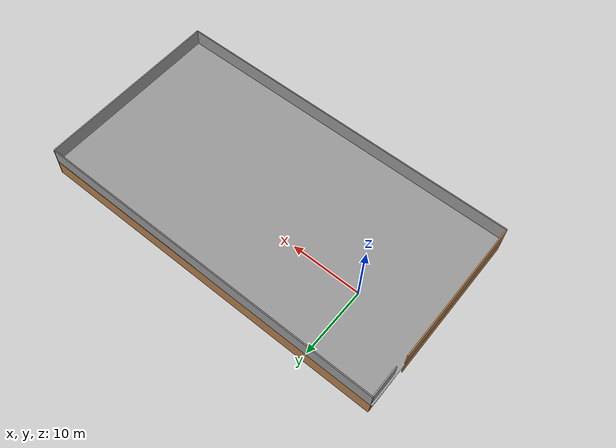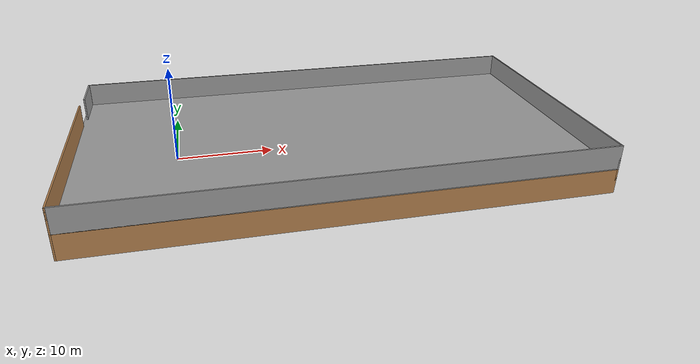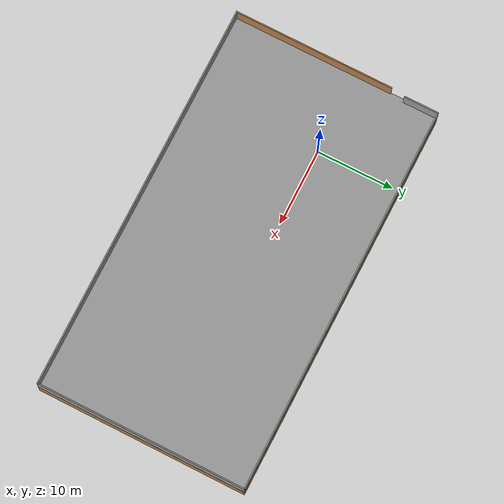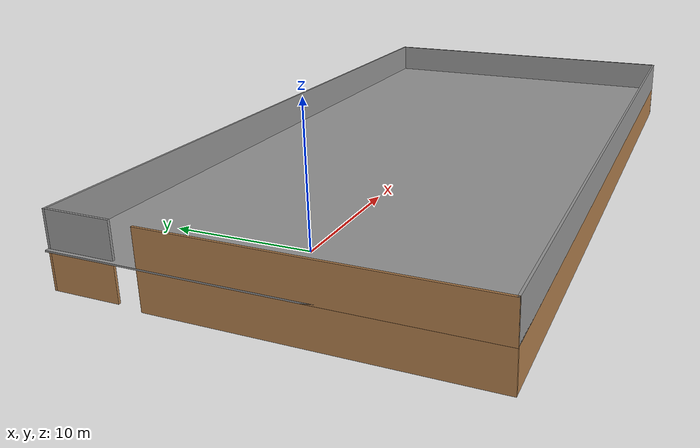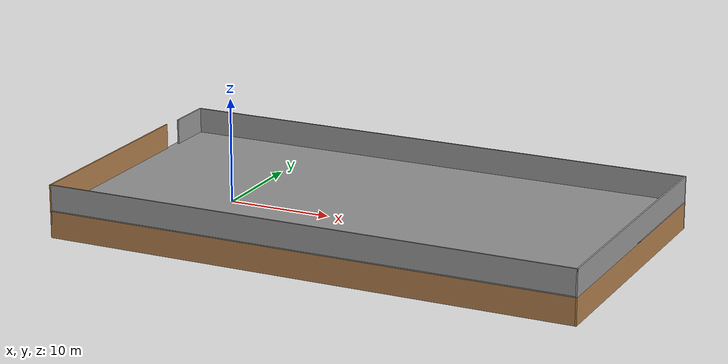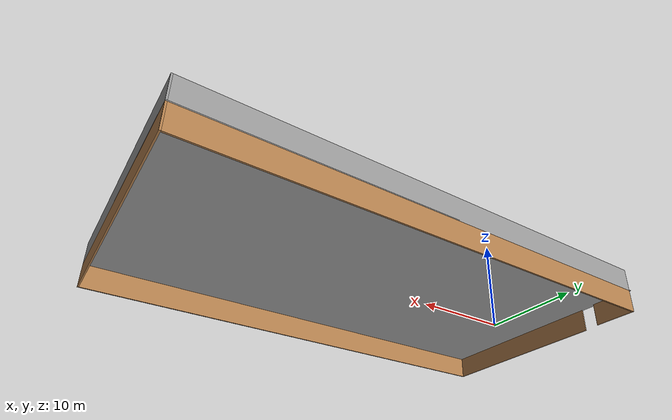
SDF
<?xml version='1.0'?>
<sdf version='1.7'>
  <model name='Untitled'>
    <pose>15.4538 -2.50054 0 0 -0 0</pose>
    <link name='Floor_0'>
      <collision name='Floor_0_Collision'>
        <geometry>
          <box>
            <size>50.5 27 0.1</size>
          </box>
        </geometry>
        <pose>0 0 0.05 0 -0 0</pose>
      </collision>
      <visual name='Floor_0_Visual'>
        <pose>0 0 0.05 0 -0 0</pose>
        <geometry>
          <box>
            <size>50.5 27 0.1</size>
          </box>
        </geometry>
        <material>
          <script>
            <uri>file://media/materials/scripts/gazebo.material</uri>
            <name>Gazebo/Grey</name>
          </script>
          <ambient>1 1 1 1</ambient>
        </material>
        <meta>
          <layer>1</layer>
        </meta>
      </visual>
      <pose>1e-06 0 2.5 0 -0 0</pose>
    </link>
    <link name='Wall_0'>
      <collision name='Wall_0_Collision'>
        <geometry>
          <box>
            <size>20.75 0.15 2.5</size>
          </box>
        </geometry>
        <pose>0 0 1.25 0 -0 0</pose>
      </collision>
      <visual name='Wall_0_Visual'>
        <pose>0 0 1.25 0 -0 0</pose>
        <geometry>
          <box>
            <size>20.75 0.15 2.5</size>
          </box>
        </geometry>
        <material>
          <script>
            <uri>file://media/materials/scripts/gazebo.material</uri>
            <name>Gazebo/Wood</name>
          </script>
          <ambient>1 1 1 1</ambient>
        </material>
        <meta>
          <layer>0</layer>
        </meta>
      </visual>
      <pose>-25.175 -3.125 0 0 -0 -1.5708</pose>
    </link>
    <link name='Wall_1'>
      <collision name='Wall_1_Collision'>
        <geometry>
          <box>
            <size>50.5 0.15 2.5</size>
          </box>
        </geometry>
        <pose>0 0 1.25 0 -0 0</pose>
      </collision>
      <visual name='Wall_1_Visual'>
        <pose>0 0 1.25 0 -0 0</pose>
        <geometry>
          <box>
            <size>50.5 0.15 2.5</size>
          </box>
        </geometry>
        <material>
          <script>
            <uri>file://media/materials/scripts/gazebo.material</uri>
            <name>Gazebo/Wood</name>
          </script>
          <ambient>1 1 1 1</ambient>
        </material>
        <meta>
          <layer>0</layer>
        </meta>
      </visual>
      <pose>0 -13.425 0 0 -0 0</pose>
    </link>
    <link name='Wall_10'>
      <collision name='Wall_10_Collision'>
        <geometry>
          <box>
            <size>4.5 0.15 2.5</size>
          </box>
        </geometry>
        <pose>0 0 1.25 0 -0 0</pose>
      </collision>
      <visual name='Wall_10_Visual'>
        <pose>0 0 1.25 0 -0 0</pose>
        <geometry>
          <box>
            <size>4.5 0.15 2.5</size>
          </box>
        </geometry>
        <material>
          <script>
            <uri>file://media/materials/scripts/gazebo.material</uri>
            <name>Gazebo/Grey</name>
          </script>
          <ambient>1 1 1 1</ambient>
        </material>
        <meta>
          <layer>1</layer>
        </meta>
      </visual>
      <pose>-24.925 11.25 2.5 0 -0 -1.5708</pose>
    </link>
    <link name='Wall_2'>
      <collision name='Wall_2_Collision'>
        <geometry>
          <box>
            <size>27 0.15 2.5</size>
          </box>
        </geometry>
        <pose>0 0 1.25 0 -0 0</pose>
      </collision>
      <visual name='Wall_2_Visual'>
        <pose>0 0 1.25 0 -0 0</pose>
        <geometry>
          <box>
            <size>27 0.15 2.5</size>
          </box>
        </geometry>
        <material>
          <script>
            <uri>file://media/materials/scripts/gazebo.material</uri>
            <name>Gazebo/Wood</name>
          </script>
          <ambient>1 1 1 1</ambient>
        </material>
        <meta>
          <layer>0</layer>
        </meta>
      </visual>
      <pose>25.175 0 0 0 -0 1.5708</pose>
    </link>
    <link name='Wall_3'>
      <collision name='Wall_3_Collision'>
        <geometry>
          <box>
            <size>50.25 0.15 2.5</size>
          </box>
        </geometry>
        <pose>0 0 1.25 0 -0 0</pose>
      </collision>
      <visual name='Wall_3_Visual'>
        <pose>0 0 1.25 0 -0 0</pose>
        <geometry>
          <box>
            <size>50.25 0.15 2.5</size>
          </box>
        </geometry>
        <material>
          <script>
            <uri>file://media/materials/scripts/gazebo.material</uri>
            <name>Gazebo/Wood</name>
          </script>
          <ambient>1 1 1 1</ambient>
        </material>
        <meta>
          <layer>0</layer>
        </meta>
      </visual>
      <pose>0.125 13.425 0 0 -0 3.14159</pose>
    </link>
    <link name='Wall_4'>
      <collision name='Wall_4_Collision'>
        <geometry>
          <box>
            <size>4.5 0.15 2.5</size>
          </box>
        </geometry>
        <pose>0 0 1.25 0 -0 0</pose>
      </collision>
      <visual name='Wall_4_Visual'>
        <pose>0 0 1.25 0 -0 0</pose>
        <geometry>
          <box>
            <size>4.5 0.15 2.5</size>
          </box>
        </geometry>
        <material>
          <script>
            <uri>file://media/materials/scripts/gazebo.material</uri>
            <name>Gazebo/Wood</name>
          </script>
          <ambient>1 1 1 1</ambient>
        </material>
        <meta>
          <layer>0</layer>
        </meta>
      </visual>
      <pose>-24.925 11.25 0 0 -0 -1.5708</pose>
    </link>
    <link name='Wall_6'>
      <collision name='Wall_6_Collision'>
        <geometry>
          <box>
            <size>20.75 0.15 2.5</size>
          </box>
        </geometry>
        <pose>0 0 1.25 0 -0 0</pose>
      </collision>
      <visual name='Wall_6_Visual'>
        <pose>0 0 1.25 0 -0 0</pose>
        <geometry>
          <box>
            <size>20.75 0.15 2.5</size>
          </box>
        </geometry>
        <material>
          <script>
            <uri>file://media/materials/scripts/gazebo.material</uri>
            <name>Gazebo/Wood</name>
          </script>
          <ambient>1 1 1 1</ambient>
        </material>
        <meta>
          <layer>1</layer>
        </meta>
      </visual>
      <pose>-25.175 -3.125 2.5 0 -0 -1.5708</pose>
    </link>
    <link name='Wall_7'>
      <collision name='Wall_7_Collision'>
        <geometry>
          <box>
            <size>50.5 0.15 2.5</size>
          </box>
        </geometry>
        <pose>0 0 1.25 0 -0 0</pose>
      </collision>
      <visual name='Wall_7_Visual'>
        <pose>0 0 1.25 0 -0 0</pose>
        <geometry>
          <box>
            <size>50.5 0.15 2.5</size>
          </box>
        </geometry>
        <material>
          <script>
            <uri>file://media/materials/scripts/gazebo.material</uri>
            <name>Gazebo/Grey</name>
          </script>
          <ambient>1 1 1 1</ambient>
        </material>
        <meta>
          <layer>1</layer>
        </meta>
      </visual>
      <pose>1e-06 -13.425 2.5 0 -0 0</pose>
    </link>
    <link name='Wall_8'>
      <collision name='Wall_8_Collision'>
        <geometry>
          <box>
            <size>27 0.15 2.5</size>
          </box>
        </geometry>
        <pose>0 0 1.25 0 -0 0</pose>
      </collision>
      <visual name='Wall_8_Visual'>
        <pose>0 0 1.25 0 -0 0</pose>
        <geometry>
          <box>
            <size>27 0.15 2.5</size>
          </box>
        </geometry>
        <material>
          <script>
            <uri>file://media/materials/scripts/gazebo.material</uri>
            <name>Gazebo/Grey</name>
          </script>
          <ambient>1 1 1 1</ambient>
        </material>
        <meta>
          <layer>1</layer>
        </meta>
      </visual>
      <pose>25.175 0 2.5 0 -0 1.5708</pose>
    </link>
    <link name='Wall_9'>
      <collision name='Wall_9_Collision'>
        <geometry>
          <box>
            <size>50.25 0.15 2.5</size>
          </box>
        </geometry>
        <pose>0 0 1.25 0 -0 0</pose>
      </collision>
      <visual name='Wall_9_Visual'>
        <pose>0 0 1.25 0 -0 0</pose>
        <geometry>
          <box>
            <size>50.25 0.15 2.5</size>
          </box>
        </geometry>
        <material>
          <script>
            <uri>file://media/materials/scripts/gazebo.material</uri>
            <name>Gazebo/Grey</name>
          </script>
          <ambient>1 1 1 1</ambient>
        </material>
        <meta>
          <layer>1</layer>
        </meta>
      </visual>
      <pose>0.125001 13.425 2.5 0 -0 3.14159</pose>
    </link>
    <static>1</static>
  </model>
</sdf>
